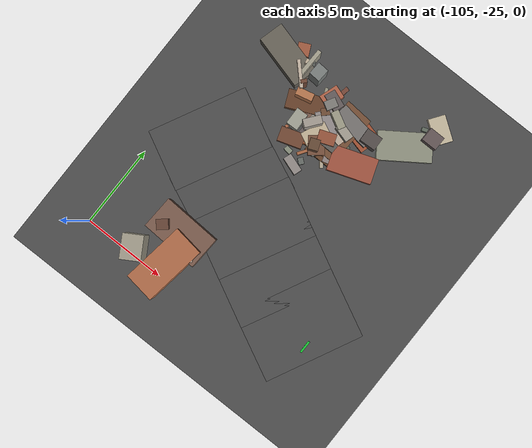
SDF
<sdf version="1.6">
 <world name="navitas_arena">
  <model name="ground_plane">
   <static>true</static>
   <link name="link">
    <collision name="collision">
     <geometry><plane><normal>0 0 1</normal><size>400 400</size></plane></geometry>
     <surface><friction><ode><mu>0.800</mu><mu2>0.800</mu2></ode></friction></surface>
    </collision>
    <visual name="visual">
     <cast_shadows>false</cast_shadows>
     <geometry><plane><normal>0 0 1</normal><size>400 400</size></plane></geometry>
     <material>
      <specular>0.04 0.04 0.04 1</specular>
      <script>
       <uri>file://media/materials/scripts/navitas_asphalt.material</uri>
       <name>Navitas/RealArenaAsphalt</name>
      </script>
     </material>
    </visual>
   </link>
  </model>
  <model name="road_kolay_1_0">
   <static>true</static>
   <pose>-92.110 -22.266 0.040 0 0 2.681</pose>
   <link name="link">
    <collision name="col"><geometry><box><size>4.201 6.000 0.020</size></box></geometry></collision>
    <visual name="vis">
     <geometry><box><size>4.201 6.000 0.020</size></box></geometry>
     <material>
      <specular>0.04 0.04 0.04 1</specular>
      <script>
       <uri>file://media/materials/scripts/navitas_asphalt.material</uri>
       <name>Navitas/RealArenaAsphalt</name>
      </script>
     </material>
    </visual>
   </link>
  </model>
  <model name="road_kolay_1_1">
   <static>true</static>
   <pose>-94.920 -20.856 0.040 0 0 2.672</pose>
   <link name="link">
    <collision name="col"><geometry><box><size>3.885 6.000 0.020</size></box></geometry></collision>
    <visual name="vis">
     <geometry><box><size>3.885 6.000 0.020</size></box></geometry>
     <material>
      <specular>0.04 0.04 0.04 1</specular>
      <script>
       <uri>file://media/materials/scripts/navitas_asphalt.material</uri>
       <name>Navitas/RealArenaAsphalt</name>
      </script>
     </material>
    </visual>
   </link>
  </model>
  <model name="road_kolay_1_2">
   <static>true</static>
   <pose>-97.476 -19.557 0.040 0 0 2.670</pose>
   <link name="link">
    <collision name="col"><geometry><box><size>3.650 6.000 0.020</size></box></geometry></collision>
    <visual name="vis">
     <geometry><box><size>3.650 6.000 0.020</size></box></geometry>
     <material>
      <specular>0.04 0.04 0.04 1</specular>
      <script>
       <uri>file://media/materials/scripts/navitas_asphalt.material</uri>
       <name>Navitas/RealArenaAsphalt</name>
      </script>
     </material>
    </visual>
   </link>
  </model>
  <model name="road_kolay_1_3">
   <static>true</static>
   <pose>-99.999 -18.352 0.040 0 0 2.722</pose>
   <link name="link">
    <collision name="col"><geometry><box><size>3.744 6.000 0.020</size></box></geometry></collision>
    <visual name="vis">
     <geometry><box><size>3.744 6.000 0.020</size></box></geometry>
     <material>
      <specular>0.04 0.04 0.04 1</specular>
      <script>
       <uri>file://media/materials/scripts/navitas_asphalt.material</uri>
       <name>Navitas/RealArenaAsphalt</name>
      </script>
     </material>
    </visual>
   </link>
  </model>
  <model name="road_kolay_1_4">
   <static>true</static>
   <pose>-102.541 -17.135 0.040 0 0 2.668</pose>
   <link name="link">
    <collision name="col"><geometry><box><size>3.696 6.000 0.020</size></box></geometry></collision>
    <visual name="vis">
     <geometry><box><size>3.696 6.000 0.020</size></box></geometry>
     <material>
      <specular>0.04 0.04 0.04 1</specular>
      <script>
       <uri>file://media/materials/scripts/navitas_asphalt.material</uri>
       <name>Navitas/RealArenaAsphalt</name>
      </script>
     </material>
    </visual>
   </link>
  </model>
  <model name="deb_kolay_8">
   <static>true</static>
   <pose>-98.745 -11.561 0.000 0 0 0</pose>
   <link name="link">
    <collision name="col_0">
     <pose>-0.168 -0.367 0.184 0.000 0.000 1.421</pose>
     <geometry><box><size>1.883 0.281 0.368</size></box></geometry>
    </collision>
    <visual name="vis_0">
     <pose>-0.168 -0.367 0.184 0.000 0.000 1.421</pose>
     <geometry><box><size>1.883 0.281 0.368</size></box></geometry>
     <material>
      <ambient>0.45 0.34 0.27 1</ambient>
      <diffuse>0.48 0.36 0.30 1</diffuse>
      <specular>0.05 0.05 0.045 1</specular>
     </material>
    </visual>
    <collision name="col_1">
     <pose>0.385 0.368 0.294 0.000 0.000 2.784</pose>
     <geometry><box><size>1.062 0.666 0.588</size></box></geometry>
    </collision>
    <visual name="vis_1">
     <pose>0.385 0.368 0.294 0.000 0.000 2.784</pose>
     <geometry><box><size>1.062 0.666 0.588</size></box></geometry>
     <material>
      <ambient>0.37 0.34 0.34 1</ambient>
      <diffuse>0.39 0.36 0.36 1</diffuse>
      <specular>0.05 0.05 0.045 1</specular>
     </material>
    </visual>
    <collision name="col_2">
     <pose>-0.099 0.088 0.067 0.000 0.000 2.009</pose>
     <geometry><box><size>1.513 0.190 0.134</size></box></geometry>
    </collision>
    <visual name="vis_2">
     <pose>-0.099 0.088 0.067 0.000 0.000 2.009</pose>
     <geometry><box><size>1.513 0.190 0.134</size></box></geometry>
     <material>
      <ambient>0.55 0.55 0.48 1</ambient>
      <diffuse>0.60 0.59 0.52 1</diffuse>
      <specular>0.05 0.05 0.045 1</specular>
     </material>
    </visual>
    <collision name="col_3">
     <pose>0.354 0.088 0.350 0.000 0.000 2.625</pose>
     <geometry><box><size>0.531 0.684 0.699</size></box></geometry>
    </collision>
    <visual name="vis_3">
     <pose>0.354 0.088 0.350 0.000 0.000 2.625</pose>
     <geometry><box><size>0.531 0.684 0.699</size></box></geometry>
     <material>
      <ambient>0.47 0.46 0.43 1</ambient>
      <diffuse>0.50 0.49 0.47 1</diffuse>
      <specular>0.05 0.05 0.045 1</specular>
     </material>
    </visual>
    <collision name="col_4">
     <pose>0.351 0.371 0.112 0.000 0.000 1.415</pose>
     <geometry><box><size>2.210 0.256 0.223</size></box></geometry>
    </collision>
    <visual name="vis_4">
     <pose>0.351 0.371 0.112 0.000 0.000 1.415</pose>
     <geometry><box><size>2.210 0.256 0.223</size></box></geometry>
     <material>
      <ambient>0.43 0.26 0.20 1</ambient>
      <diffuse>0.47 0.28 0.22 1</diffuse>
      <specular>0.05 0.05 0.045 1</specular>
     </material>
    </visual>
    <collision name="col_5">
     <pose>0.359 -0.402 0.234 0.000 0.000 0.766</pose>
     <geometry><box><size>0.501 0.412 0.467</size></box></geometry>
    </collision>
    <visual name="vis_5">
     <pose>0.359 -0.402 0.234 0.000 0.000 0.766</pose>
     <geometry><box><size>0.501 0.412 0.467</size></box></geometry>
     <material>
      <ambient>0.41 0.28 0.20 1</ambient>
      <diffuse>0.44 0.30 0.21 1</diffuse>
      <specular>0.05 0.05 0.045 1</specular>
     </material>
    </visual>
    <collision name="col_6">
     <pose>0.120 0.476 0.255 0.000 0.000 1.247</pose>
     <geometry><box><size>1.141 0.791 0.510</size></box></geometry>
    </collision>
    <visual name="vis_6">
     <pose>0.120 0.476 0.255 0.000 0.000 1.247</pose>
     <geometry><box><size>1.141 0.791 0.510</size></box></geometry>
     <material>
      <ambient>0.65 0.36 0.26 1</ambient>
      <diffuse>0.70 0.39 0.28 1</diffuse>
      <specular>0.05 0.05 0.045 1</specular>
     </material>
    </visual>
   </link>
  </model>
  <model name="deb_kolay_15">
   <static>true</static>
   <pose>-92.987 -9.173 0.000 0 0 0</pose>
   <link name="link">
    <collision name="col_0">
     <pose>0.438 -0.218 0.101 0.000 0.000 -0.089</pose>
     <geometry><box><size>0.355 0.434 0.202</size></box></geometry>
    </collision>
    <visual name="vis_0">
     <pose>0.438 -0.218 0.101 0.000 0.000 -0.089</pose>
     <geometry><box><size>0.355 0.434 0.202</size></box></geometry>
     <material>
      <ambient>0.45 0.34 0.25 1</ambient>
      <diffuse>0.49 0.37 0.27 1</diffuse>
      <specular>0.05 0.05 0.045 1</specular>
     </material>
    </visual>
    <collision name="col_1">
     <pose>0.240 -0.324 0.402 0.000 0.000 -0.004</pose>
     <geometry><box><size>0.932 0.816 0.803</size></box></geometry>
    </collision>
    <visual name="vis_1">
     <pose>0.240 -0.324 0.402 0.000 0.000 -0.004</pose>
     <geometry><box><size>0.932 0.816 0.803</size></box></geometry>
     <material>
      <ambient>0.36 0.31 0.32 1</ambient>
      <diffuse>0.39 0.34 0.34 1</diffuse>
      <specular>0.05 0.05 0.045 1</specular>
     </material>
    </visual>
    <collision name="col_2">
     <pose>0.215 0.136 0.117 0.000 0.000 0.319</pose>
     <geometry><box><size>1.620 0.223 0.234</size></box></geometry>
    </collision>
    <visual name="vis_2">
     <pose>0.215 0.136 0.117 0.000 0.000 0.319</pose>
     <geometry><box><size>1.620 0.223 0.234</size></box></geometry>
     <material>
      <ambient>0.35 0.39 0.34 1</ambient>
      <diffuse>0.38 0.42 0.37 1</diffuse>
      <specular>0.05 0.05 0.045 1</specular>
     </material>
    </visual>
    <collision name="col_3">
     <pose>0.313 0.445 0.138 0.000 0.000 -0.613</pose>
     <geometry><box><size>1.557 1.008 0.275</size></box></geometry>
    </collision>
    <visual name="vis_3">
     <pose>0.313 0.445 0.138 0.000 0.000 -0.613</pose>
     <geometry><box><size>1.557 1.008 0.275</size></box></geometry>
     <material>
      <ambient>0.71 0.67 0.58 1</ambient>
      <diffuse>0.77 0.72 0.62 1</diffuse>
      <specular>0.05 0.05 0.045 1</specular>
     </material>
    </visual>
   </link>
  </model>
  <model name="deb_kolay_60">
   <static>true</static>
   <pose>-97.203 -13.614 0.000 0 0 0</pose>
   <link name="link">
    <collision name="col_0">
     <pose>-0.417 -0.128 0.225 0.000 0.000 -0.929</pose>
     <geometry><box><size>1.120 0.946 0.451</size></box></geometry>
    </collision>
    <visual name="vis_0">
     <pose>-0.417 -0.128 0.225 0.000 0.000 -0.929</pose>
     <geometry><box><size>1.120 0.946 0.451</size></box></geometry>
     <material>
      <ambient>0.44 0.29 0.22 1</ambient>
      <diffuse>0.47 0.32 0.24 1</diffuse>
      <specular>0.05 0.05 0.045 1</specular>
     </material>
    </visual>
    <collision name="col_1">
     <pose>-0.206 0.514 0.334 0.000 0.000 0.368</pose>
     <geometry><box><size>1.009 0.701 0.668</size></box></geometry>
    </collision>
    <visual name="vis_1">
     <pose>-0.206 0.514 0.334 0.000 0.000 0.368</pose>
     <geometry><box><size>1.009 0.701 0.668</size></box></geometry>
     <material>
      <ambient>0.55 0.31 0.21 1</ambient>
      <diffuse>0.59 0.33 0.23 1</diffuse>
      <specular>0.05 0.05 0.045 1</specular>
     </material>
    </visual>
    <collision name="col_2">
     <pose>-0.325 0.366 0.174 0.000 0.000 0.070</pose>
     <geometry><box><size>1.474 1.581 0.347</size></box></geometry>
    </collision>
    <visual name="vis_2">
     <pose>-0.325 0.366 0.174 0.000 0.000 0.070</pose>
     <geometry><box><size>1.474 1.581 0.347</size></box></geometry>
     <material>
      <ambient>0.60 0.38 0.23 1</ambient>
      <diffuse>0.65 0.41 0.25 1</diffuse>
      <specular>0.05 0.05 0.045 1</specular>
     </material>
    </visual>
    <collision name="col_3">
     <pose>-0.358 -0.228 0.142 0.000 0.000 0.984</pose>
     <geometry><box><size>2.236 0.165 0.285</size></box></geometry>
    </collision>
    <visual name="vis_3">
     <pose>-0.358 -0.228 0.142 0.000 0.000 0.984</pose>
     <geometry><box><size>2.236 0.165 0.285</size></box></geometry>
     <material>
      <ambient>0.62 0.38 0.25 1</ambient>
      <diffuse>0.67 0.41 0.27 1</diffuse>
      <specular>0.05 0.05 0.045 1</specular>
     </material>
    </visual>
   </link>
  </model>
  <model name="deb_kolay_61">
   <static>true</static>
   <pose>-99.670 -12.181 0.000 0 0 0</pose>
   <link name="link">
    <collision name="col_0">
     <pose>0.328 0.054 0.203 0.000 0.000 0.413</pose>
     <geometry><box><size>2.688 1.073 0.407</size></box></geometry>
    </collision>
    <visual name="vis_0">
     <pose>0.328 0.054 0.203 0.000 0.000 0.413</pose>
     <geometry><box><size>2.688 1.073 0.407</size></box></geometry>
     <material>
      <ambient>0.38 0.24 0.16 1</ambient>
      <diffuse>0.41 0.26 0.17 1</diffuse>
      <specular>0.05 0.05 0.045 1</specular>
     </material>
    </visual>
    <collision name="col_1">
     <pose>0.008 0.020 0.088 0.000 0.000 1.186</pose>
     <geometry><box><size>0.253 0.282 0.176</size></box></geometry>
    </collision>
    <visual name="vis_1">
     <pose>0.008 0.020 0.088 0.000 0.000 1.186</pose>
     <geometry><box><size>0.253 0.282 0.176</size></box></geometry>
     <material>
      <ambient>0.41 0.25 0.19 1</ambient>
      <diffuse>0.44 0.27 0.21 1</diffuse>
      <specular>0.05 0.05 0.045 1</specular>
     </material>
    </visual>
    <collision name="col_2">
     <pose>-0.270 0.122 0.114 0.000 0.000 -0.798</pose>
     <geometry><box><size>1.143 0.211 0.228</size></box></geometry>
    </collision>
    <visual name="vis_2">
     <pose>-0.270 0.122 0.114 0.000 0.000 -0.798</pose>
     <geometry><box><size>1.143 0.211 0.228</size></box></geometry>
     <material>
      <ambient>0.44 0.41 0.41 1</ambient>
      <diffuse>0.47 0.44 0.44 1</diffuse>
      <specular>0.05 0.05 0.045 1</specular>
     </material>
    </visual>
    <collision name="col_3">
     <pose>-0.105 0.210 0.140 0.000 0.000 1.157</pose>
     <geometry><box><size>0.402 0.369 0.279</size></box></geometry>
    </collision>
    <visual name="vis_3">
     <pose>-0.105 0.210 0.140 0.000 0.000 1.157</pose>
     <geometry><box><size>0.402 0.369 0.279</size></box></geometry>
     <material>
      <ambient>0.28 0.30 0.25 1</ambient>
      <diffuse>0.30 0.32 0.27 1</diffuse>
      <specular>0.05 0.05 0.045 1</specular>
     </material>
    </visual>
    <collision name="col_4">
     <pose>-0.161 0.155 0.579 0.000 0.000 0.232</pose>
     <geometry><box><size>0.988 0.437 1.158</size></box></geometry>
    </collision>
    <visual name="vis_4">
     <pose>-0.161 0.155 0.579 0.000 0.000 0.232</pose>
     <geometry><box><size>0.988 0.437 1.158</size></box></geometry>
     <material>
      <ambient>0.66 0.43 0.29 1</ambient>
      <diffuse>0.72 0.47 0.31 1</diffuse>
      <specular>0.05 0.05 0.045 1</specular>
     </material>
    </visual>
    <collision name="col_5">
     <pose>0.107 -0.638 0.125 0.000 0.000 1.372</pose>
     <geometry><box><size>0.203 0.210 0.250</size></box></geometry>
    </collision>
    <visual name="vis_5">
     <pose>0.107 -0.638 0.125 0.000 0.000 1.372</pose>
     <geometry><box><size>0.203 0.210 0.250</size></box></geometry>
     <material>
      <ambient>0.59 0.59 0.50 1</ambient>
      <diffuse>0.63 0.63 0.54 1</diffuse>
      <specular>0.05 0.05 0.045 1</specular>
     </material>
    </visual>
   </link>
  </model>
  <model name="deb_kolay_75">
   <static>true</static>
   <pose>-96.212 -11.711 0.000 0 0 0</pose>
   <link name="link">
    <collision name="col_0">
     <pose>0.272 0.078 0.086 0.000 0.000 -0.246</pose>
     <geometry><box><size>1.524 1.345 0.173</size></box></geometry>
    </collision>
    <visual name="vis_0">
     <pose>0.272 0.078 0.086 0.000 0.000 -0.246</pose>
     <geometry><box><size>1.524 1.345 0.173</size></box></geometry>
     <material>
      <ambient>0.58 0.30 0.19 1</ambient>
      <diffuse>0.63 0.32 0.20 1</diffuse>
      <specular>0.05 0.05 0.045 1</specular>
     </material>
    </visual>
    <collision name="col_1">
     <pose>-0.309 -0.633 0.159 0.000 0.000 1.453</pose>
     <geometry><box><size>2.126 0.255 0.318</size></box></geometry>
    </collision>
    <visual name="vis_1">
     <pose>-0.309 -0.633 0.159 0.000 0.000 1.453</pose>
     <geometry><box><size>2.126 0.255 0.318</size></box></geometry>
     <material>
      <ambient>0.71 0.68 0.57 1</ambient>
      <diffuse>0.76 0.74 0.62 1</diffuse>
      <specular>0.05 0.05 0.045 1</specular>
     </material>
    </visual>
    <collision name="col_2">
     <pose>0.786 0.066 0.392 0.000 0.000 0.049</pose>
     <geometry><box><size>0.978 0.795 0.785</size></box></geometry>
    </collision>
    <visual name="vis_2">
     <pose>0.786 0.066 0.392 0.000 0.000 0.049</pose>
     <geometry><box><size>0.978 0.795 0.785</size></box></geometry>
     <material>
      <ambient>0.30 0.27 0.27 1</ambient>
      <diffuse>0.33 0.30 0.29 1</diffuse>
      <specular>0.05 0.05 0.045 1</specular>
     </material>
    </visual>
    <collision name="col_3">
     <pose>-0.373 0.152 0.191 0.000 0.000 -0.141</pose>
     <geometry><box><size>2.426 0.937 0.381</size></box></geometry>
    </collision>
    <visual name="vis_3">
     <pose>-0.373 0.152 0.191 0.000 0.000 -0.141</pose>
     <geometry><box><size>2.426 0.937 0.381</size></box></geometry>
     <material>
      <ambient>0.43 0.41 0.41 1</ambient>
      <diffuse>0.46 0.45 0.44 1</diffuse>
      <specular>0.05 0.05 0.045 1</specular>
     </material>
    </visual>
   </link>
  </model>
  <model name="deb_kolay_116">
   <static>true</static>
   <pose>-94.278 -10.584 0.000 0 0 0</pose>
   <link name="link">
    <collision name="col_0">
     <pose>-0.081 0.026 0.065 0.000 0.000 0.506</pose>
     <geometry><box><size>2.221 0.194 0.130</size></box></geometry>
    </collision>
    <visual name="vis_0">
     <pose>-0.081 0.026 0.065 0.000 0.000 0.506</pose>
     <geometry><box><size>2.221 0.194 0.130</size></box></geometry>
     <material>
      <ambient>0.69 0.43 0.29 1</ambient>
      <diffuse>0.74 0.47 0.32 1</diffuse>
      <specular>0.05 0.05 0.045 1</specular>
     </material>
    </visual>
    <collision name="col_1">
     <pose>-0.290 -0.244 0.129 0.000 0.000 0.618</pose>
     <geometry><box><size>2.141 0.241 0.259</size></box></geometry>
    </collision>
    <visual name="vis_1">
     <pose>-0.290 -0.244 0.129 0.000 0.000 0.618</pose>
     <geometry><box><size>2.141 0.241 0.259</size></box></geometry>
     <material>
      <ambient>0.65 0.39 0.26 1</ambient>
      <diffuse>0.70 0.43 0.28 1</diffuse>
      <specular>0.05 0.05 0.045 1</specular>
     </material>
    </visual>
    <collision name="col_2">
     <pose>-0.649 -0.333 0.108 0.000 0.000 1.927</pose>
     <geometry><box><size>0.190 0.338 0.216</size></box></geometry>
    </collision>
    <visual name="vis_2">
     <pose>-0.649 -0.333 0.108 0.000 0.000 1.927</pose>
     <geometry><box><size>0.190 0.338 0.216</size></box></geometry>
     <material>
      <ambient>0.52 0.54 0.45 1</ambient>
      <diffuse>0.56 0.59 0.49 1</diffuse>
      <specular>0.05 0.05 0.045 1</specular>
     </material>
    </visual>
    <collision name="col_3">
     <pose>0.591 -0.123 0.174 0.000 0.000 0.605</pose>
     <geometry><box><size>3.147 1.670 0.348</size></box></geometry>
    </collision>
    <visual name="vis_3">
     <pose>0.591 -0.123 0.174 0.000 0.000 0.605</pose>
     <geometry><box><size>3.147 1.670 0.348</size></box></geometry>
     <material>
      <ambient>0.52 0.53 0.46 1</ambient>
      <diffuse>0.56 0.57 0.50 1</diffuse>
      <specular>0.05 0.05 0.045 1</specular>
     </material>
    </visual>
   </link>
  </model>
  <model name="deb_kolay_117">
   <static>true</static>
   <pose>-98.627 -13.004 0.000 0 0 0</pose>
   <link name="link">
    <collision name="col_0">
     <pose>-0.271 0.506 0.106 0.000 0.000 1.015</pose>
     <geometry><box><size>1.238 0.261 0.211</size></box></geometry>
    </collision>
    <visual name="vis_0">
     <pose>-0.271 0.506 0.106 0.000 0.000 1.015</pose>
     <geometry><box><size>1.238 0.261 0.211</size></box></geometry>
     <material>
      <ambient>0.44 0.31 0.26 1</ambient>
      <diffuse>0.48 0.34 0.28 1</diffuse>
      <specular>0.05 0.05 0.045 1</specular>
     </material>
    </visual>
    <collision name="col_1">
     <pose>0.009 0.183 0.172 0.000 0.000 2.270</pose>
     <geometry><box><size>0.298 0.178 0.344</size></box></geometry>
    </collision>
    <visual name="vis_1">
     <pose>0.009 0.183 0.172 0.000 0.000 2.270</pose>
     <geometry><box><size>0.298 0.178 0.344</size></box></geometry>
     <material>
      <ambient>0.37 0.35 0.36 1</ambient>
      <diffuse>0.39 0.38 0.39 1</diffuse>
      <specular>0.05 0.05 0.045 1</specular>
     </material>
    </visual>
    <collision name="col_2">
     <pose>-0.015 0.588 0.190 0.000 0.000 2.665</pose>
     <geometry><box><size>1.960 0.176 0.379</size></box></geometry>
    </collision>
    <visual name="vis_2">
     <pose>-0.015 0.588 0.190 0.000 0.000 2.665</pose>
     <geometry><box><size>1.960 0.176 0.379</size></box></geometry>
     <material>
      <ambient>0.32 0.32 0.28 1</ambient>
      <diffuse>0.34 0.34 0.31 1</diffuse>
      <specular>0.05 0.05 0.045 1</specular>
     </material>
    </visual>
    <collision name="col_3">
     <pose>-0.704 -0.023 0.180 0.000 0.000 1.286</pose>
     <geometry><box><size>2.017 0.159 0.359</size></box></geometry>
    </collision>
    <visual name="vis_3">
     <pose>-0.704 -0.023 0.180 0.000 0.000 1.286</pose>
     <geometry><box><size>2.017 0.159 0.359</size></box></geometry>
     <material>
      <ambient>0.65 0.40 0.28 1</ambient>
      <diffuse>0.70 0.43 0.30 1</diffuse>
      <specular>0.05 0.05 0.045 1</specular>
     </material>
    </visual>
    <collision name="col_4">
     <pose>-0.119 -0.571 0.166 0.000 0.000 1.527</pose>
     <geometry><box><size>1.441 0.233 0.333</size></box></geometry>
    </collision>
    <visual name="vis_4">
     <pose>-0.119 -0.571 0.166 0.000 0.000 1.527</pose>
     <geometry><box><size>1.441 0.233 0.333</size></box></geometry>
     <material>
      <ambient>0.36 0.33 0.32 1</ambient>
      <diffuse>0.39 0.35 0.35 1</diffuse>
      <specular>0.05 0.05 0.045 1</specular>
     </material>
    </visual>
    <collision name="col_5">
     <pose>0.060 0.063 0.624 0.000 0.000 0.907</pose>
     <geometry><box><size>1.048 0.476 1.248</size></box></geometry>
    </collision>
    <visual name="vis_5">
     <pose>0.060 0.063 0.624 0.000 0.000 0.907</pose>
     <geometry><box><size>1.048 0.476 1.248</size></box></geometry>
     <material>
      <ambient>0.59 0.57 0.53 1</ambient>
      <diffuse>0.64 0.61 0.57 1</diffuse>
      <specular>0.05 0.05 0.045 1</specular>
     </material>
    </visual>
    <collision name="col_6">
     <pose>-0.722 -0.301 0.392 0.000 0.000 1.601</pose>
     <geometry><box><size>1.033 0.699 0.784</size></box></geometry>
    </collision>
    <visual name="vis_6">
     <pose>-0.722 -0.301 0.392 0.000 0.000 1.601</pose>
     <geometry><box><size>1.033 0.699 0.784</size></box></geometry>
     <material>
      <ambient>0.59 0.58 0.54 1</ambient>
      <diffuse>0.63 0.63 0.58 1</diffuse>
      <specular>0.05 0.05 0.045 1</specular>
     </material>
    </visual>
   </link>
  </model>
  <model name="deb_kolay_125">
   <static>true</static>
   <pose>-97.480 -12.423 0.000 0 0 0</pose>
   <link name="link">
    <collision name="col_0">
     <pose>0.414 0.108 0.177 0.000 0.000 2.184</pose>
     <geometry><box><size>0.665 0.363 0.353</size></box></geometry>
    </collision>
    <visual name="vis_0">
     <pose>0.414 0.108 0.177 0.000 0.000 2.184</pose>
     <geometry><box><size>0.665 0.363 0.353</size></box></geometry>
     <material>
      <ambient>0.76 0.73 0.62 1</ambient>
      <diffuse>0.83 0.78 0.67 1</diffuse>
      <specular>0.05 0.05 0.045 1</specular>
     </material>
    </visual>
    <collision name="col_1">
     <pose>0.089 0.405 0.112 0.000 0.000 2.029</pose>
     <geometry><box><size>0.476 0.457 0.225</size></box></geometry>
    </collision>
    <visual name="vis_1">
     <pose>0.089 0.405 0.112 0.000 0.000 2.029</pose>
     <geometry><box><size>0.476 0.457 0.225</size></box></geometry>
     <material>
      <ambient>0.60 0.59 0.55 1</ambient>
      <diffuse>0.65 0.64 0.60 1</diffuse>
      <specular>0.05 0.05 0.045 1</specular>
     </material>
    </visual>
    <collision name="col_2">
     <pose>0.642 0.155 0.432 0.000 0.000 1.293</pose>
     <geometry><box><size>0.512 0.978 0.863</size></box></geometry>
    </collision>
    <visual name="vis_2">
     <pose>0.642 0.155 0.432 0.000 0.000 1.293</pose>
     <geometry><box><size>0.512 0.978 0.863</size></box></geometry>
     <material>
      <ambient>0.59 0.57 0.53 1</ambient>
      <diffuse>0.64 0.62 0.57 1</diffuse>
      <specular>0.05 0.05 0.045 1</specular>
     </material>
    </visual>
    <collision name="col_3">
     <pose>-0.488 -0.008 0.204 0.000 0.000 2.443</pose>
     <geometry><box><size>1.417 0.985 0.408</size></box></geometry>
    </collision>
    <visual name="vis_3">
     <pose>-0.488 -0.008 0.204 0.000 0.000 2.443</pose>
     <geometry><box><size>1.417 0.985 0.408</size></box></geometry>
     <material>
      <ambient>0.53 0.50 0.50 1</ambient>
      <diffuse>0.57 0.54 0.54 1</diffuse>
      <specular>0.05 0.05 0.045 1</specular>
     </material>
    </visual>
    <collision name="col_4">
     <pose>0.600 -0.113 0.062 0.000 0.000 0.864</pose>
     <geometry><box><size>2.188 0.189 0.124</size></box></geometry>
    </collision>
    <visual name="vis_4">
     <pose>0.600 -0.113 0.062 0.000 0.000 0.864</pose>
     <geometry><box><size>2.188 0.189 0.124</size></box></geometry>
     <material>
      <ambient>0.50 0.48 0.47 1</ambient>
      <diffuse>0.54 0.52 0.50 1</diffuse>
      <specular>0.05 0.05 0.045 1</specular>
     </material>
    </visual>
   </link>
  </model>
  <model name="deb_kolay_151">
   <static>true</static>
   <pose>-97.990 -14.450 0.000 0 0 0</pose>
   <link name="link">
    <collision name="col_0">
     <pose>-1.003 0.193 0.178 0.000 0.000 3.453</pose>
     <geometry><box><size>1.428 0.857 0.356</size></box></geometry>
    </collision>
    <visual name="vis_0">
     <pose>-1.003 0.193 0.178 0.000 0.000 3.453</pose>
     <geometry><box><size>1.428 0.857 0.356</size></box></geometry>
     <material>
      <ambient>0.41 0.26 0.18 1</ambient>
      <diffuse>0.45 0.28 0.20 1</diffuse>
      <specular>0.05 0.05 0.045 1</specular>
     </material>
    </visual>
    <collision name="col_1">
     <pose>-0.705 -0.446 0.117 0.000 0.000 1.412</pose>
     <geometry><box><size>0.293 0.429 0.235</size></box></geometry>
    </collision>
    <visual name="vis_1">
     <pose>-0.705 -0.446 0.117 0.000 0.000 1.412</pose>
     <geometry><box><size>0.293 0.429 0.235</size></box></geometry>
     <material>
      <ambient>0.49 0.51 0.44 1</ambient>
      <diffuse>0.53 0.55 0.48 1</diffuse>
      <specular>0.05 0.05 0.045 1</specular>
     </material>
    </visual>
    <collision name="col_2">
     <pose>-0.554 0.317 0.145 0.000 0.000 3.671</pose>
     <geometry><box><size>1.443 0.269 0.290</size></box></geometry>
    </collision>
    <visual name="vis_2">
     <pose>-0.554 0.317 0.145 0.000 0.000 3.671</pose>
     <geometry><box><size>1.443 0.269 0.290</size></box></geometry>
     <material>
      <ambient>0.59 0.33 0.19 1</ambient>
      <diffuse>0.64 0.35 0.20 1</diffuse>
      <specular>0.05 0.05 0.045 1</specular>
     </material>
    </visual>
    <collision name="col_3">
     <pose>0.235 -0.506 0.128 0.000 0.000 2.450</pose>
     <geometry><box><size>0.379 0.318 0.255</size></box></geometry>
    </collision>
    <visual name="vis_3">
     <pose>0.235 -0.506 0.128 0.000 0.000 2.450</pose>
     <geometry><box><size>0.379 0.318 0.255</size></box></geometry>
     <material>
      <ambient>0.37 0.39 0.37 1</ambient>
      <diffuse>0.40 0.42 0.40 1</diffuse>
      <specular>0.05 0.05 0.045 1</specular>
     </material>
    </visual>
    <collision name="col_4">
     <pose>0.121 1.106 0.206 0.000 0.000 1.137</pose>
     <geometry><box><size>1.490 1.199 0.411</size></box></geometry>
    </collision>
    <visual name="vis_4">
     <pose>0.121 1.106 0.206 0.000 0.000 1.137</pose>
     <geometry><box><size>1.490 1.199 0.411</size></box></geometry>
     <material>
      <ambient>0.71 0.65 0.55 1</ambient>
      <diffuse>0.76 0.70 0.59 1</diffuse>
      <specular>0.05 0.05 0.045 1</specular>
     </material>
    </visual>
    <collision name="col_5">
     <pose>-0.007 -0.960 0.257 0.000 0.000 2.818</pose>
     <geometry><box><size>1.093 0.505 0.514</size></box></geometry>
    </collision>
    <visual name="vis_5">
     <pose>-0.007 -0.960 0.257 0.000 0.000 2.818</pose>
     <geometry><box><size>1.093 0.505 0.514</size></box></geometry>
     <material>
      <ambient>0.53 0.50 0.49 1</ambient>
      <diffuse>0.57 0.54 0.53 1</diffuse>
      <specular>0.05 0.05 0.045 1</specular>
     </material>
    </visual>
   </link>
  </model>
  <model name="deb_kolay_154">
   <static>true</static>
   <pose>-96.433 -13.036 0.000 0 0 0</pose>
   <link name="link">
    <collision name="col_0">
     <pose>-0.659 0.005 0.087 0.000 0.000 3.068</pose>
     <geometry><box><size>2.337 0.686 0.174</size></box></geometry>
    </collision>
    <visual name="vis_0">
     <pose>-0.659 0.005 0.087 0.000 0.000 3.068</pose>
     <geometry><box><size>2.337 0.686 0.174</size></box></geometry>
     <material>
      <ambient>0.54 0.55 0.48 1</ambient>
      <diffuse>0.58 0.60 0.52 1</diffuse>
      <specular>0.05 0.05 0.045 1</specular>
     </material>
    </visual>
    <collision name="col_1">
     <pose>1.076 -0.286 0.197 0.000 0.000 3.481</pose>
     <geometry><box><size>2.615 1.476 0.394</size></box></geometry>
    </collision>
    <visual name="vis_1">
     <pose>1.076 -0.286 0.197 0.000 0.000 3.481</pose>
     <geometry><box><size>2.615 1.476 0.394</size></box></geometry>
     <material>
      <ambient>0.58 0.31 0.24 1</ambient>
      <diffuse>0.63 0.33 0.25 1</diffuse>
      <specular>0.05 0.05 0.045 1</specular>
     </material>
    </visual>
    <collision name="col_2">
     <pose>0.432 -0.577 0.174 0.000 0.000 3.417</pose>
     <geometry><box><size>1.928 0.777 0.348</size></box></geometry>
    </collision>
    <visual name="vis_2">
     <pose>0.432 -0.577 0.174 0.000 0.000 3.417</pose>
     <geometry><box><size>1.928 0.777 0.348</size></box></geometry>
     <material>
      <ambient>0.52 0.47 0.47 1</ambient>
      <diffuse>0.56 0.51 0.50 1</diffuse>
      <specular>0.05 0.05 0.045 1</specular>
     </material>
    </visual>
    <collision name="col_3">
     <pose>-0.741 -0.239 0.253 0.000 0.000 3.128</pose>
     <geometry><box><size>1.051 0.546 0.505</size></box></geometry>
    </collision>
    <visual name="vis_3">
     <pose>-0.741 -0.239 0.253 0.000 0.000 3.128</pose>
     <geometry><box><size>1.051 0.546 0.505</size></box></geometry>
     <material>
      <ambient>0.34 0.33 0.31 1</ambient>
      <diffuse>0.37 0.36 0.34 1</diffuse>
      <specular>0.05 0.05 0.045 1</specular>
     </material>
    </visual>
   </link>
  </model>
  <model name="deb_kolay_182">
   <static>true</static>
   <pose>-97.662 -12.158 0.000 0 0 0</pose>
   <link name="link">
    <collision name="col_0">
     <pose>-0.281 -0.656 0.156 0.000 0.000 0.217</pose>
     <geometry><box><size>1.886 0.168 0.311</size></box></geometry>
    </collision>
    <visual name="vis_0">
     <pose>-0.281 -0.656 0.156 0.000 0.000 0.217</pose>
     <geometry><box><size>1.886 0.168 0.311</size></box></geometry>
     <material>
      <ambient>0.67 0.61 0.53 1</ambient>
      <diffuse>0.72 0.66 0.58 1</diffuse>
      <specular>0.05 0.05 0.045 1</specular>
     </material>
    </visual>
    <collision name="col_1">
     <pose>0.344 -0.572 0.063 0.000 0.000 1.404</pose>
     <geometry><box><size>0.357 0.242 0.127</size></box></geometry>
    </collision>
    <visual name="vis_1">
     <pose>0.344 -0.572 0.063 0.000 0.000 1.404</pose>
     <geometry><box><size>0.357 0.242 0.127</size></box></geometry>
     <material>
      <ambient>0.36 0.32 0.33 1</ambient>
      <diffuse>0.39 0.34 0.36 1</diffuse>
      <specular>0.05 0.05 0.045 1</specular>
     </material>
    </visual>
    <collision name="col_2">
     <pose>-0.622 -0.462 0.129 0.000 0.000 1.513</pose>
     <geometry><box><size>0.236 0.265 0.257</size></box></geometry>
    </collision>
    <visual name="vis_2">
     <pose>-0.622 -0.462 0.129 0.000 0.000 1.513</pose>
     <geometry><box><size>0.236 0.265 0.257</size></box></geometry>
     <material>
      <ambient>0.51 0.53 0.49 1</ambient>
      <diffuse>0.56 0.57 0.53 1</diffuse>
      <specular>0.05 0.05 0.045 1</specular>
     </material>
    </visual>
    <collision name="col_3">
     <pose>-0.639 0.598 0.186 0.000 0.000 2.343</pose>
     <geometry><box><size>0.931 0.751 0.373</size></box></geometry>
    </collision>
    <visual name="vis_3">
     <pose>-0.639 0.598 0.186 0.000 0.000 2.343</pose>
     <geometry><box><size>0.931 0.751 0.373</size></box></geometry>
     <material>
      <ambient>0.55 0.54 0.47 1</ambient>
      <diffuse>0.59 0.58 0.51 1</diffuse>
      <specular>0.05 0.05 0.045 1</specular>
     </material>
    </visual>
    <collision name="col_4">
     <pose>0.139 0.201 0.492 0.000 0.000 2.648</pose>
     <geometry><box><size>1.027 0.449 0.984</size></box></geometry>
    </collision>
    <visual name="vis_4">
     <pose>0.139 0.201 0.492 0.000 0.000 2.648</pose>
     <geometry><box><size>1.027 0.449 0.984</size></box></geometry>
     <material>
      <ambient>0.58 0.56 0.49 1</ambient>
      <diffuse>0.62 0.61 0.53 1</diffuse>
      <specular>0.05 0.05 0.045 1</specular>
     </material>
    </visual>
    <collision name="col_5">
     <pose>0.656 -0.150 0.185 0.000 0.000 1.493</pose>
     <geometry><box><size>3.177 1.685 0.370</size></box></geometry>
    </collision>
    <visual name="vis_5">
     <pose>0.656 -0.150 0.185 0.000 0.000 1.493</pose>
     <geometry><box><size>3.177 1.685 0.370</size></box></geometry>
     <material>
      <ambient>0.42 0.28 0.19 1</ambient>
      <diffuse>0.46 0.31 0.21 1</diffuse>
      <specular>0.05 0.05 0.045 1</specular>
     </material>
    </visual>
   </link>
  </model>
  <model name="deb_kolay_185">
   <static>true</static>
   <pose>-97.363 -12.706 0.000 0 0 0</pose>
   <link name="link">
    <collision name="col_0">
     <pose>0.463 0.178 0.111 0.000 0.000 1.995</pose>
     <geometry><box><size>2.097 0.184 0.222</size></box></geometry>
    </collision>
    <visual name="vis_0">
     <pose>0.463 0.178 0.111 0.000 0.000 1.995</pose>
     <geometry><box><size>2.097 0.184 0.222</size></box></geometry>
     <material>
      <ambient>0.47 0.42 0.41 1</ambient>
      <diffuse>0.51 0.46 0.44 1</diffuse>
      <specular>0.05 0.05 0.045 1</specular>
     </material>
    </visual>
    <collision name="col_1">
     <pose>-0.402 -0.334 0.070 0.000 0.000 0.006</pose>
     <geometry><box><size>1.061 0.187 0.141</size></box></geometry>
    </collision>
    <visual name="vis_1">
     <pose>-0.402 -0.334 0.070 0.000 0.000 0.006</pose>
     <geometry><box><size>1.061 0.187 0.141</size></box></geometry>
     <material>
      <ambient>0.40 0.24 0.18 1</ambient>
      <diffuse>0.43 0.26 0.20 1</diffuse>
      <specular>0.05 0.05 0.045 1</specular>
     </material>
    </visual>
    <collision name="col_2">
     <pose>0.142 -0.111 0.121 0.000 0.000 0.629</pose>
     <geometry><box><size>1.584 0.784 0.241</size></box></geometry>
    </collision>
    <visual name="vis_2">
     <pose>0.142 -0.111 0.121 0.000 0.000 0.629</pose>
     <geometry><box><size>1.584 0.784 0.241</size></box></geometry>
     <material>
      <ambient>0.62 0.40 0.26 1</ambient>
      <diffuse>0.67 0.43 0.28 1</diffuse>
      <specular>0.05 0.05 0.045 1</specular>
     </material>
    </visual>
    <collision name="col_3">
     <pose>0.416 0.022 0.203 0.000 0.000 -0.233</pose>
     <geometry><box><size>0.771 0.484 0.407</size></box></geometry>
    </collision>
    <visual name="vis_3">
     <pose>0.416 0.022 0.203 0.000 0.000 -0.233</pose>
     <geometry><box><size>0.771 0.484 0.407</size></box></geometry>
     <material>
      <ambient>0.69 0.62 0.55 1</ambient>
      <diffuse>0.74 0.67 0.60 1</diffuse>
      <specular>0.05 0.05 0.045 1</specular>
     </material>
    </visual>
    <collision name="col_4">
     <pose>0.447 0.187 0.163 0.000 0.000 -0.273</pose>
     <geometry><box><size>1.800 0.183 0.327</size></box></geometry>
    </collision>
    <visual name="vis_4">
     <pose>0.447 0.187 0.163 0.000 0.000 -0.273</pose>
     <geometry><box><size>1.800 0.183 0.327</size></box></geometry>
     <material>
      <ambient>0.34 0.35 0.29 1</ambient>
      <diffuse>0.36 0.38 0.31 1</diffuse>
      <specular>0.05 0.05 0.045 1</specular>
     </material>
    </visual>
    <collision name="col_5">
     <pose>0.219 0.460 0.150 0.000 0.000 -0.355</pose>
     <geometry><box><size>0.248 0.354 0.300</size></box></geometry>
    </collision>
    <visual name="vis_5">
     <pose>0.219 0.460 0.150 0.000 0.000 -0.355</pose>
     <geometry><box><size>0.248 0.354 0.300</size></box></geometry>
     <material>
      <ambient>0.64 0.37 0.28 1</ambient>
      <diffuse>0.70 0.40 0.30 1</diffuse>
      <specular>0.05 0.05 0.045 1</specular>
     </material>
    </visual>
    <collision name="col_6">
     <pose>0.141 -0.425 0.133 0.000 0.000 1.571</pose>
     <geometry><box><size>2.295 1.564 0.266</size></box></geometry>
    </collision>
    <visual name="vis_6">
     <pose>0.141 -0.425 0.133 0.000 0.000 1.571</pose>
     <geometry><box><size>2.295 1.564 0.266</size></box></geometry>
     <material>
      <ambient>0.38 0.25 0.16 1</ambient>
      <diffuse>0.41 0.27 0.17 1</diffuse>
      <specular>0.05 0.05 0.045 1</specular>
     </material>
    </visual>
   </link>
  </model>
  <model name="deb_kolay_201">
   <static>true</static>
   <pose>-97.585 -13.239 0.000 0 0 0</pose>
   <link name="link">
    <collision name="col_0">
     <pose>-0.514 0.334 0.154 0.000 0.000 -0.842</pose>
     <geometry><box><size>3.048 0.978 0.308</size></box></geometry>
    </collision>
    <visual name="vis_0">
     <pose>-0.514 0.334 0.154 0.000 0.000 -0.842</pose>
     <geometry><box><size>3.048 0.978 0.308</size></box></geometry>
     <material>
      <ambient>0.53 0.51 0.47 1</ambient>
      <diffuse>0.58 0.55 0.51 1</diffuse>
      <specular>0.05 0.05 0.045 1</specular>
     </material>
    </visual>
    <collision name="col_1">
     <pose>0.324 -0.479 0.125 0.000 0.000 -0.901</pose>
     <geometry><box><size>2.102 0.200 0.250</size></box></geometry>
    </collision>
    <visual name="vis_1">
     <pose>0.324 -0.479 0.125 0.000 0.000 -0.901</pose>
     <geometry><box><size>2.102 0.200 0.250</size></box></geometry>
     <material>
      <ambient>0.66 0.61 0.53 1</ambient>
      <diffuse>0.71 0.66 0.58 1</diffuse>
      <specular>0.05 0.05 0.045 1</specular>
     </material>
    </visual>
    <collision name="col_2">
     <pose>-0.130 -0.633 0.581 0.000 0.000 -1.186</pose>
     <geometry><box><size>0.632 0.580 1.163</size></box></geometry>
    </collision>
    <visual name="vis_2">
     <pose>-0.130 -0.633 0.581 0.000 0.000 -1.186</pose>
     <geometry><box><size>0.632 0.580 1.163</size></box></geometry>
     <material>
      <ambient>0.37 0.27 0.19 1</ambient>
      <diffuse>0.40 0.29 0.21 1</diffuse>
      <specular>0.05 0.05 0.045 1</specular>
     </material>
    </visual>
    <collision name="col_3">
     <pose>-0.354 -0.589 0.164 0.000 0.000 0.646</pose>
     <geometry><box><size>0.476 0.294 0.328</size></box></geometry>
    </collision>
    <visual name="vis_3">
     <pose>-0.354 -0.589 0.164 0.000 0.000 0.646</pose>
     <geometry><box><size>0.476 0.294 0.328</size></box></geometry>
     <material>
      <ambient>0.63 0.63 0.54 1</ambient>
      <diffuse>0.68 0.68 0.58 1</diffuse>
      <specular>0.05 0.05 0.045 1</specular>
     </material>
    </visual>
   </link>
  </model>
  <model name="chic_kolay_0">
   <static>true</static>
   <pose>-100.866 -23.762 0.000 0 0 0</pose>
   <link name="link">
    <collision name="col_0">
     <pose>-1.142 -0.690 0.728 0.000 0.000 2.108</pose>
     <geometry><box><size>1.446 1.193 1.456</size></box></geometry>
    </collision>
    <visual name="vis_0">
     <pose>-1.142 -0.690 0.728 0.000 0.000 2.108</pose>
     <geometry><box><size>1.446 1.193 1.456</size></box></geometry>
     <material>
      <ambient>0.58 0.57 0.50 1</ambient>
      <diffuse>0.63 0.61 0.54 1</diffuse>
      <specular>0.05 0.05 0.045 1</specular>
     </material>
    </visual>
    <collision name="col_1">
     <pose>0.391 1.522 0.462 0.000 0.000 -0.051</pose>
     <geometry><box><size>3.473 1.978 0.924</size></box></geometry>
    </collision>
    <visual name="vis_1">
     <pose>0.391 1.522 0.462 0.000 0.000 -0.051</pose>
     <geometry><box><size>3.473 1.978 0.924</size></box></geometry>
     <material>
      <ambient>0.44 0.33 0.28 1</ambient>
      <diffuse>0.48 0.36 0.30 1</diffuse>
      <specular>0.05 0.05 0.045 1</specular>
     </material>
    </visual>
    <collision name="col_2">
     <pose>0.998 0.408 0.549 0.000 0.000 0.395</pose>
     <geometry><box><size>1.883 0.297 1.099</size></box></geometry>
    </collision>
    <visual name="vis_2">
     <pose>0.998 0.408 0.549 0.000 0.000 0.395</pose>
     <geometry><box><size>1.883 0.297 1.099</size></box></geometry>
     <material>
      <ambient>0.75 0.68 0.62 1</ambient>
      <diffuse>0.81 0.73 0.67 1</diffuse>
      <specular>0.05 0.05 0.045 1</specular>
     </material>
    </visual>
    <collision name="col_3">
     <pose>-0.075 0.975 0.315 0.000 0.000 -0.116</pose>
     <geometry><box><size>0.727 0.701 0.631</size></box></geometry>
    </collision>
    <visual name="vis_3">
     <pose>-0.075 0.975 0.315 0.000 0.000 -0.116</pose>
     <geometry><box><size>0.727 0.701 0.631</size></box></geometry>
     <material>
      <ambient>0.48 0.34 0.25 1</ambient>
      <diffuse>0.51 0.37 0.27 1</diffuse>
      <specular>0.05 0.05 0.045 1</specular>
     </material>
    </visual>
    <collision name="col_4">
     <pose>-0.629 1.307 0.667 0.000 0.000 0.711</pose>
     <geometry><box><size>0.677 0.590 1.334</size></box></geometry>
    </collision>
    <visual name="vis_4">
     <pose>-0.629 1.307 0.667 0.000 0.000 0.711</pose>
     <geometry><box><size>0.677 0.590 1.334</size></box></geometry>
     <material>
      <ambient>0.37 0.25 0.19 1</ambient>
      <diffuse>0.40 0.27 0.21 1</diffuse>
      <specular>0.05 0.05 0.045 1</specular>
     </material>
    </visual>
    <collision name="col_5">
     <pose>0.735 -0.624 0.627 0.000 0.000 1.277</pose>
     <geometry><box><size>0.619 0.408 1.253</size></box></geometry>
    </collision>
    <visual name="vis_5">
     <pose>0.735 -0.624 0.627 0.000 0.000 1.277</pose>
     <geometry><box><size>0.619 0.408 1.253</size></box></geometry>
     <material>
      <ambient>0.56 0.35 0.21 1</ambient>
      <diffuse>0.60 0.37 0.23 1</diffuse>
      <specular>0.05 0.05 0.045 1</specular>
     </material>
    </visual>
    <collision name="col_6">
     <pose>0.788 -0.348 0.662 0.000 0.000 1.427</pose>
     <geometry><box><size>3.744 1.811 1.325</size></box></geometry>
    </collision>
    <visual name="vis_6">
     <pose>0.788 -0.348 0.662 0.000 0.000 1.427</pose>
     <geometry><box><size>3.744 1.811 1.325</size></box></geometry>
     <material>
      <ambient>0.64 0.39 0.26 1</ambient>
      <diffuse>0.69 0.42 0.28 1</diffuse>
      <specular>0.05 0.05 0.045 1</specular>
     </material>
    </visual>
    <collision name="col_7">
     <pose>1.173 0.877 0.548 0.000 0.000 0.636</pose>
     <geometry><box><size>0.693 0.496 1.096</size></box></geometry>
    </collision>
    <visual name="vis_7">
     <pose>1.173 0.877 0.548 0.000 0.000 0.636</pose>
     <geometry><box><size>0.693 0.496 1.096</size></box></geometry>
     <material>
      <ambient>0.60 0.58 0.54 1</ambient>
      <diffuse>0.65 0.63 0.59 1</diffuse>
      <specular>0.05 0.05 0.045 1</specular>
     </material>
    </visual>
   </link>
  </model>
  <model name="chic_kolay_1">
   <static>true</static>
   <pose>-101.140 -11.259 0.000 0 0 0</pose>
   <link name="link">
    <collision name="col_0">
     <pose>-0.817 0.436 0.398 0.000 0.000 -0.261</pose>
     <geometry><box><size>3.215 1.460 0.796</size></box></geometry>
    </collision>
    <visual name="vis_0">
     <pose>-0.817 0.436 0.398 0.000 0.000 -0.261</pose>
     <geometry><box><size>3.215 1.460 0.796</size></box></geometry>
     <material>
      <ambient>0.38 0.36 0.33 1</ambient>
      <diffuse>0.41 0.39 0.35 1</diffuse>
      <specular>0.05 0.05 0.045 1</specular>
     </material>
    </visual>
    <collision name="col_1">
     <pose>-0.323 1.204 0.389 0.000 0.000 -1.118</pose>
     <geometry><box><size>0.734 0.710 0.777</size></box></geometry>
    </collision>
    <visual name="vis_1">
     <pose>-0.323 1.204 0.389 0.000 0.000 -1.118</pose>
     <geometry><box><size>0.734 0.710 0.777</size></box></geometry>
     <material>
      <ambient>0.58 0.34 0.23 1</ambient>
      <diffuse>0.63 0.36 0.25 1</diffuse>
      <specular>0.05 0.05 0.045 1</specular>
     </material>
    </visual>
    <collision name="col_2">
     <pose>0.475 0.727 0.639 0.000 0.000 1.547</pose>
     <geometry><box><size>1.693 0.229 1.278</size></box></geometry>
    </collision>
    <visual name="vis_2">
     <pose>0.475 0.727 0.639 0.000 0.000 1.547</pose>
     <geometry><box><size>1.693 0.229 1.278</size></box></geometry>
     <material>
      <ambient>0.60 0.58 0.52 1</ambient>
      <diffuse>0.65 0.63 0.56 1</diffuse>
      <specular>0.05 0.05 0.045 1</specular>
     </material>
    </visual>
    <collision name="col_3">
     <pose>1.169 0.619 0.676 0.000 0.000 1.508</pose>
     <geometry><box><size>0.777 0.678 1.352</size></box></geometry>
    </collision>
    <visual name="vis_3">
     <pose>1.169 0.619 0.676 0.000 0.000 1.508</pose>
     <geometry><box><size>0.777 0.678 1.352</size></box></geometry>
     <material>
      <ambient>0.44 0.46 0.45 1</ambient>
      <diffuse>0.48 0.50 0.49 1</diffuse>
      <specular>0.05 0.05 0.045 1</specular>
     </material>
    </visual>
    <collision name="col_4">
     <pose>0.415 -0.066 0.640 0.000 0.000 -0.799</pose>
     <geometry><box><size>1.584 0.188 1.280</size></box></geometry>
    </collision>
    <visual name="vis_4">
     <pose>0.415 -0.066 0.640 0.000 0.000 -0.799</pose>
     <geometry><box><size>1.584 0.188 1.280</size></box></geometry>
     <material>
      <ambient>0.71 0.66 0.59 1</ambient>
      <diffuse>0.77 0.71 0.64 1</diffuse>
      <specular>0.05 0.05 0.045 1</specular>
     </material>
    </visual>
    <collision name="col_5">
     <pose>0.478 0.844 0.453 0.000 0.000 -0.320</pose>
     <geometry><box><size>0.221 0.467 0.905</size></box></geometry>
    </collision>
    <visual name="vis_5">
     <pose>0.478 0.844 0.453 0.000 0.000 -0.320</pose>
     <geometry><box><size>0.221 0.467 0.905</size></box></geometry>
     <material>
      <ambient>0.46 0.48 0.46 1</ambient>
      <diffuse>0.50 0.52 0.49 1</diffuse>
      <specular>0.05 0.05 0.045 1</specular>
     </material>
    </visual>
    <collision name="col_6">
     <pose>0.373 0.744 0.591 0.000 0.000 0.228</pose>
     <geometry><box><size>0.341 0.279 1.181</size></box></geometry>
    </collision>
    <visual name="vis_6">
     <pose>0.373 0.744 0.591 0.000 0.000 0.228</pose>
     <geometry><box><size>0.341 0.279 1.181</size></box></geometry>
     <material>
      <ambient>0.70 0.65 0.57 1</ambient>
      <diffuse>0.76 0.70 0.61 1</diffuse>
      <specular>0.05 0.05 0.045 1</specular>
     </material>
    </visual>
    <collision name="col_7">
     <pose>0.838 -0.276 0.669 0.000 0.000 0.824</pose>
     <geometry><box><size>0.357 0.209 1.339</size></box></geometry>
    </collision>
    <visual name="vis_7">
     <pose>0.838 -0.276 0.669 0.000 0.000 0.824</pose>
     <geometry><box><size>0.357 0.209 1.339</size></box></geometry>
     <material>
      <ambient>0.40 0.26 0.19 1</ambient>
      <diffuse>0.44 0.28 0.21 1</diffuse>
      <specular>0.05 0.05 0.045 1</specular>
     </material>
    </visual>
   </link>
  </model>
  <model name="kb_kolay_W">
   <static>true</static>
   <pose>-91.072 -23.000 0.070 0 0 0.000</pose>
   <link name="link">
    <collision name="col"><geometry><box><size>0.120 0.760 0.040</size></box></geometry></collision>
    <visual name="vis">
     <geometry><box><size>0.120 0.760 0.040</size></box></geometry>
     <material>
      <ambient>0.10 0.75 0.20 1</ambient>
      <diffuse>0.10 0.75 0.20 1</diffuse>
      <specular>0.04 0.04 0.04 1</specular>
     </material>
    </visual>
   </link>
  </model>
 </world>
</sdf>
